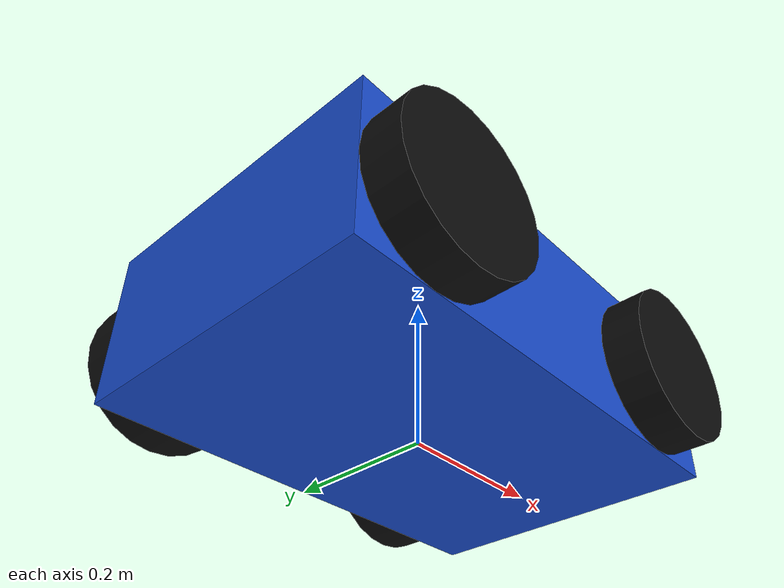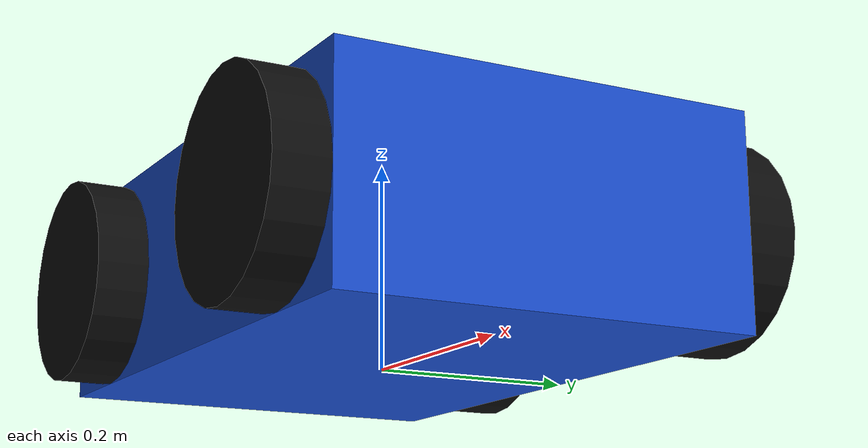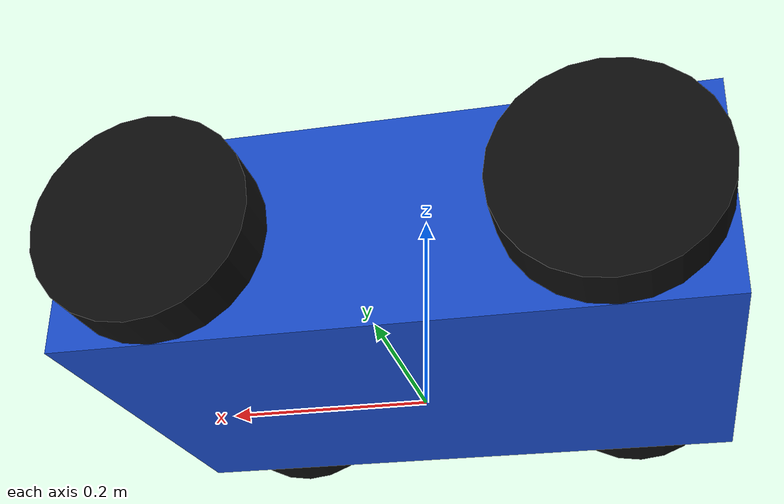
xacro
<?xml version="1.0"?>
<robot name="chackras">

  <!-- CHASIS                    -->

  <link name="base_link">
    <visual>
      <origin xyz="0 0 0.10" rpy="0 0 0"/>
      <geometry>
        <box size="0.60 0.40 0.20"/>
      </geometry>
      <material name="blue">
        <color rgba="0.1 0.3 0.8 1.0"/>
      </material>
    </visual>

    <collision>
      <origin xyz="0 0 0.10" rpy="0 0 0"/>
      <geometry>
        <box size="0.60 0.40 0.20"/>
      </geometry>
    </collision>

    <inertial>
      <origin xyz="0 0 0.10" rpy="0 0 0"/>
      <mass value="10.0"/>
      <inertia
        ixx="0.18"
        ixy="0.0"
        ixz="0.0"
        iyy="0.33"
        iyz="0.0"
        izz="0.43"/>
    </inertial>
  </link>

  <!-- RUEDA DELANTERA IZQUIERDA -->

  <link name="front_left_wheel">
    <visual>
      <origin xyz="0 0 0" rpy="1.5708 0 0"/>
      <geometry>
        <cylinder radius="0.10" length="0.05"/>
      </geometry>
      <material name="black">
        <color rgba="0.05 0.05 0.05 1.0"/>
      </material>
    </visual>

    <collision>
      <origin xyz="0 0 0" rpy="1.5708 0 0"/>
      <geometry>
        <cylinder radius="0.10" length="0.05"/>
      </geometry>
    </collision>

    <inertial>
      <mass value="1.0"/>
      <inertia
        ixx="0.005"
        ixy="0.0"
        ixz="0.0"
        iyy="0.005"
        iyz="0.0"
        izz="0.005"/>
    </inertial>
  </link>

  <joint name="front_left_wheel_joint"
         type="continuous">

    <parent link="base_link"/>
    <child link="front_left_wheel"/>

    <origin xyz="0.20 0.225 0.10"
            rpy="0 0 0"/>

    <axis xyz="0 1 0"/>
  </joint>

  <!-- RUEDA DELANTERA DERECHA   -->

  <link name="front_right_wheel">
    <visual>
      <origin xyz="0 0 0" rpy="1.5708 0 0"/>
      <geometry>
        <cylinder radius="0.10" length="0.05"/>
      </geometry>
      <material name="black">
        <color rgba="0.05 0.05 0.05 1.0"/>
      </material>
    </visual>

    <collision>
      <origin xyz="0 0 0" rpy="1.5708 0 0"/>
      <geometry>
        <cylinder radius="0.10" length="0.05"/>
      </geometry>
    </collision>

    <inertial>
      <mass value="1.0"/>
      <inertia
        ixx="0.005"
        ixy="0.0"
        ixz="0.0"
        iyy="0.005"
        iyz="0.0"
        izz="0.005"/>
    </inertial>
  </link>

  <joint name="front_right_wheel_joint"
         type="continuous">

    <parent link="base_link"/>
    <child link="front_right_wheel"/>

    <origin xyz="0.20 -0.225 0.10"
            rpy="0 0 0"/>

    <axis xyz="0 1 0"/>
  </joint>

  <!-- RUEDA TRASERA IZQUIERDA   -->

  <link name="rear_left_wheel">
    <visual>
      <origin xyz="0 0 0" rpy="1.5708 0 0"/>
      <geometry>
        <cylinder radius="0.10" length="0.05"/>
      </geometry>
      <material name="black">
        <color rgba="0.05 0.05 0.05 1.0"/>
      </material>
    </visual>

    <collision>
      <origin xyz="0 0 0" rpy="1.5708 0 0"/>
      <geometry>
        <cylinder radius="0.10" length="0.05"/>
      </geometry>
    </collision>

    <inertial>
      <mass value="1.0"/>
      <inertia
        ixx="0.005"
        ixy="0.0"
        ixz="0.0"
        iyy="0.005"
        iyz="0.0"
        izz="0.005"/>
    </inertial>
  </link>

  <joint name="rear_left_wheel_joint"
         type="continuous">

    <parent link="base_link"/>
    <child link="rear_left_wheel"/>

    <origin xyz="-0.20 0.225 0.10"
            rpy="0 0 0"/>

    <axis xyz="0 1 0"/>
  </joint>

  <!-- RUEDA TRASERA DERECHA     -->

  <link name="rear_right_wheel">
    <visual>
      <origin xyz="0 0 0" rpy="1.5708 0 0"/>
      <geometry>
        <cylinder radius="0.10" length="0.05"/>
      </geometry>
      <material name="black">
        <color rgba="0.05 0.05 0.05 1.0"/>
      </material>
    </visual>

    <collision>
      <origin xyz="0 0 0" rpy="1.5708 0 0"/>
      <geometry>
        <cylinder radius="0.10" length="0.05"/>
      </geometry>
    </collision>

    <inertial>
      <mass value="1.0"/>
      <inertia
        ixx="0.005"
        ixy="0.0"
        ixz="0.0"
        iyy="0.005"
        iyz="0.0"
        izz="0.005"/>
    </inertial>
  </link>

  <joint name="rear_right_wheel_joint"
         type="continuous">

    <parent link="base_link"/>
    <child link="rear_right_wheel"/>

    <origin xyz="-0.20 -0.225 0.10"
            rpy="0 0 0"/>

    <axis xyz="0 1 0"/>
  </joint>

  <!-- ROS2 CONTROL              -->

  <ros2_control name="RobotSystem" type="system">

    <hardware>

      <plugin>my_robot_hardware/MiRobotHardware</plugin>

    </hardware>

    <!-- MOTOR RUEDA DELANTERA IZQ. -->

    <joint name="front_left_wheel_joint">

      <command_interface name="velocity">
        <param name="min">-10</param>
        <param name="max">10</param>
      </command_interface>

      <state_interface name="position"/>
      <state_interface name="velocity"/>

      <state_interface name="current"/>

    </joint>

    <!-- MOTOR RUEDA DELANTERA DER. -->

    <joint name="front_right_wheel_joint">

      <command_interface name="velocity">
        <param name="min">-10</param>
        <param name="max">10</param>
      </command_interface>

      <state_interface name="position"/>
      <state_interface name="velocity"/>

      <state_interface name="current"/>

    </joint>

    <!-- MOTOR RUEDA TRASERA IZQ.   -->

    <joint name="rear_left_wheel_joint">

      <command_interface name="velocity">
        <param name="min">-10</param>
        <param name="max">10</param>
      </command_interface>

      <state_interface name="position"/>
      <state_interface name="velocity"/>

      <state_interface name="current"/>

    </joint>

    <!-- MOTOR RUEDA TRASERA DER.   -->

    <joint name="rear_right_wheel_joint">

      <command_interface name="velocity">
        <param name="min">-10</param>
        <param name="max">10</param>
      </command_interface>

      <state_interface name="position"/>
      <state_interface name="velocity"/>

      <state_interface name="current"/>

    </joint>

  </ros2_control>

</robot>
